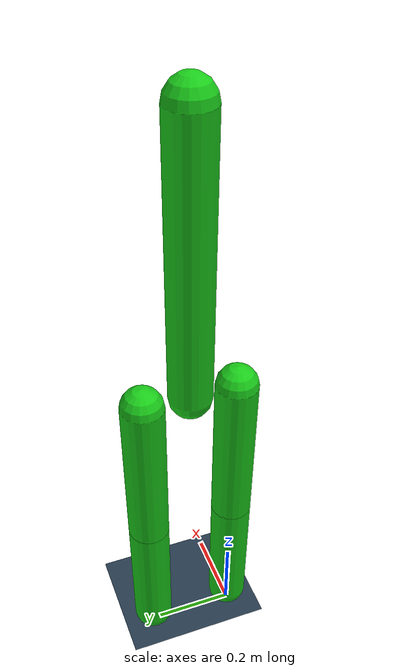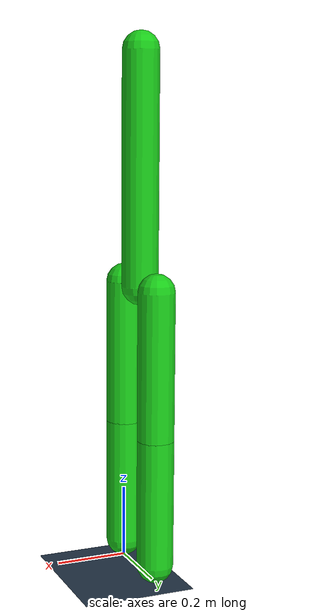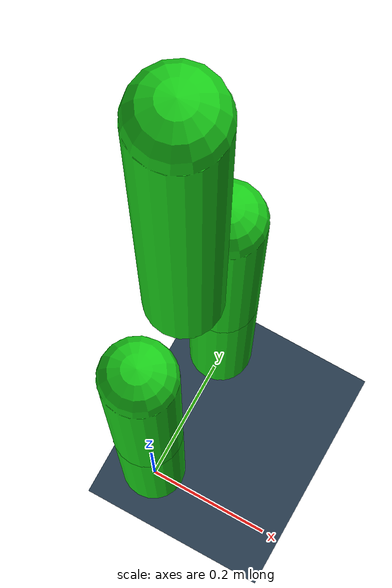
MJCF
<!--
	This model consists of a five link pendulum tree, to make up a basic walker
	All joints are hinges and the body is contraint to the saggital plane

	This version is hinged around the stance foot!
-->
<mujoco model="FiveLinkBiped">

	<compiler inertiafromgeom="true" angle="radian"/>

	<default>
		<joint damping="1" armature="0"/>
		<geom condim="1" material="matgeom" solref="0.05 2"/>
	</default>

	<asset>
		<texture type="skybox" builtin="gradient" rgb1="0.3 0.5 0.7" rgb2="0.2 0.2 0.2" width="512" height="512"/>
		<texture name="texplane" type="2d" builtin="checker" rgb1=".2 .3 .4" rgb2=".1 0.15 0.2" width="512" height="512" mark="cross" markrgb=".8 .8 .8"/>

		<material name="matplane" texture="texplane" texrepeat="1 1" texuniform="true"/>
		<material name="matgeom" rgba="0.1 0.8 0.1 1"/>
	</asset>

	<worldbody>
		<light diffuse="0.8 0.8 0.8" pos="0.75 0.75 1.5" dir="-0.5 -0.5 -1"/>

		<geom name="floor" pos="0 0 0.0" size="5 5 .25" type="plane" material="matplane" condim="3"/>

		<!-- Link 1 -->
		<body pos="0 0 0.051" name="right_tibia">
			<joint type="slide" axis = "1 0 0" name="slidex"/>
			<joint type="slide" axis = "0 0 1" name="slidez"/>
			<joint type="hinge" axis="0 1 0" name="right_ankle"/>
			<geom name="link1" type="capsule" fromto="0 0 0 0 0 0.35" size="0.05 0.3"/>

			<!-- Link 2 -->
			<body pos="0 0 0.35" name="right_femur">
				<joint type="hinge" axis="0 -1 0" name="right_knee" limited="true" range="0 2.35"/>
				<geom name="link2" type="capsule" fromto="0 0 0 0 0 0.4" size="0.05 0.3"/>

				<!-- Link 3 -->
				<body pos="0 0.11 0.4" name="torso">
					<joint type="hinge" axis="0 1 0" name="right_hip" limited="true" range="-0.53 1.92"/>
					<geom name="link3" type="capsule" fromto="0 0 0 0 0 0.625" size="0.05 0.3"/>
				</body>

				<!-- Link 4 -->
				<body pos="0 0.22 0.4" name="left_femur">
					<joint type="hinge" axis="0 -1 0" name="left_hip"/>
					<geom name="link4" type="capsule" fromto="0 0 0 0 0 -0.4" size="0.05 0.3"/>

					<!-- Link 5 -->
					<body pos="0 0 -0.4" name="left_tibia">
						<joint type="hinge" axis="0 1 0" name="left_knee" limited="true" range="0 2.35"/>
						<geom name="link5" type="capsule" fromto="0 0 0 0 0 -0.35" size="0.05 0.3"/>
						<site name="foot_site" rgba="1 1 1 0" type="sphere" size="0.05" pos="0 0 -0.45"/>
					</body>
				</body>
			</body>
		</body>

	</worldbody>

	<actuator>
		<motor name="torque2" joint="right_knee" ctrlrange="-100 100" ctrllimited="true"/>
		<motor name="torque3" joint="right_hip" ctrlrange="-100 100" ctrllimited="true"/>
		<motor name="torque4" joint="left_hip" ctrlrange="-100 100" ctrllimited="true"/>
		<motor name="torque5" joint="left_knee" ctrlrange="-100 100" ctrllimited="true"/>
	</actuator>

	<sensor>
		<subtreecom name="com" body="right_tibia"/>
		<subtreelinvel name="linvel" body="right_tibia"/>
		<subtreecom name="torso_com" body="torso"/>

		<jointlimitpos name="right_knee_lim" joint="right_knee"/>
		<jointlimitpos name="right_hip_lim" joint="right_hip"/>
		<jointlimitpos name="left_knee_lim" joint="left_knee"/>

	</sensor>
</mujoco>
